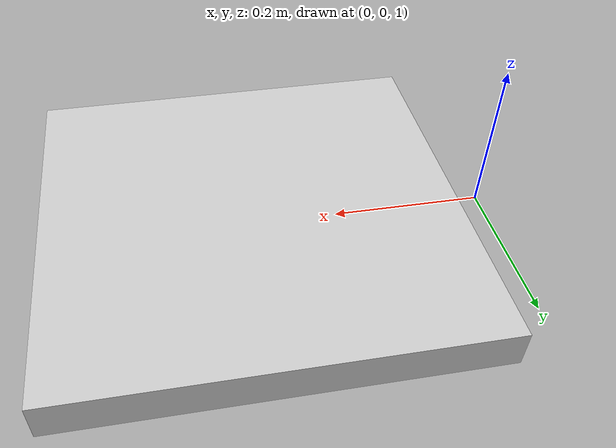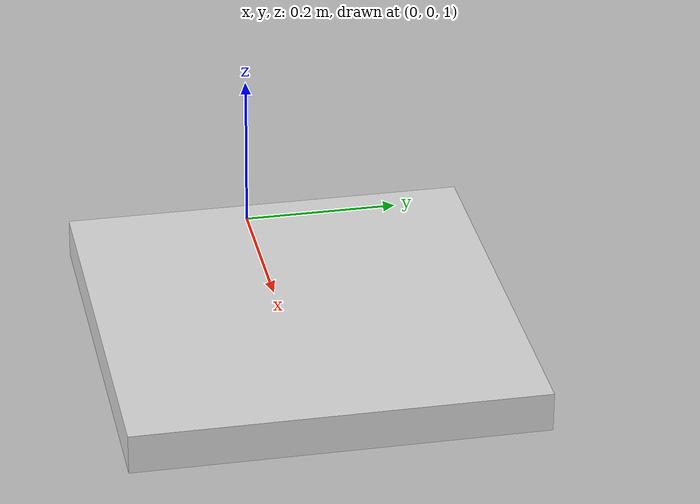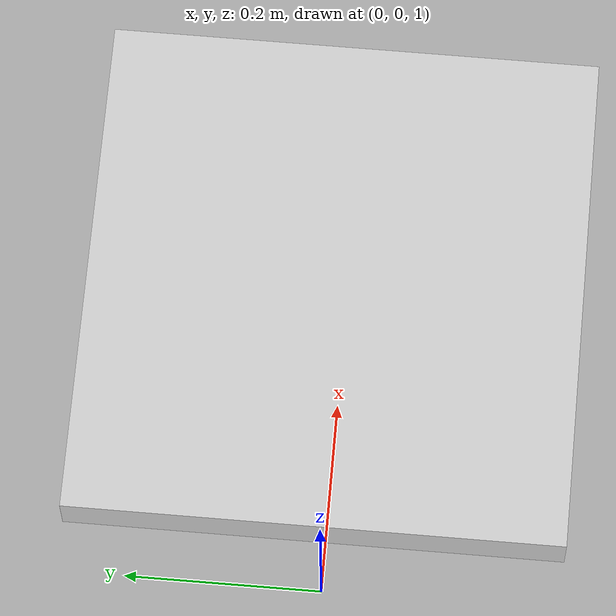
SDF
<?xml version="1.0" ?>
<!-- tmp sdf file generated from LISDF -->
<sdf version="1.9">
  <world name="tmp_world">

<model name="sink_counter_left">
  <static>True</static>
  <pose>0.3179999887943268 0.013000000268220901 1.0240000486373901 0.0 -0.0 0.0</pose>
  <link name="box">

    <inertial>
      <mass>0</mass>
      <pose>0.0 0.0 0.0 0.0 -0.0 0.0</pose>
      <inertia>
        <ixx>0</ixx>
        <ixy>0</ixy>
        <ixz>0</ixz>
        <iyy>0</iyy>
        <iyz>0</iyz>
        <izz>0</izz>
      </inertia>
    </inertial>
    <collision name="box_collision">>
      <pose>0.0 0.0 0.0 0.0 -0.0 0.0</pose>
      <geometry>
        <box>
          <size>0.531000018119812 0.5109999775886536 0.05000000074505806</size>
        </box>
      </geometry>

    </collision>
    <visual name="box_visual">
      <pose>0.0 0.0 0.0 0.0 -0.0 0.0</pose>
      <geometry>
        <box>
          <size>0.531000018119812 0.5109999775886536 0.05000000074505806</size>
        </box>
      </geometry>
      <material>
        <ambient>1.0 1.0 1.0 1.0</ambient>
        <diffuse>0.8500000238418579 0.8500000238418579 0.8500000238418579 1.0</diffuse>
        <specular>0.0 0.0 0.0 1.0</specular>
        <emissive>0.0 0.0 0.0 1.0</emissive>
      </material>
      <cast_shadows>True</cast_shadows>
    </visual>
    <self_collide>True</self_collide>
  </link>

</model>

  </world>
</sdf>
